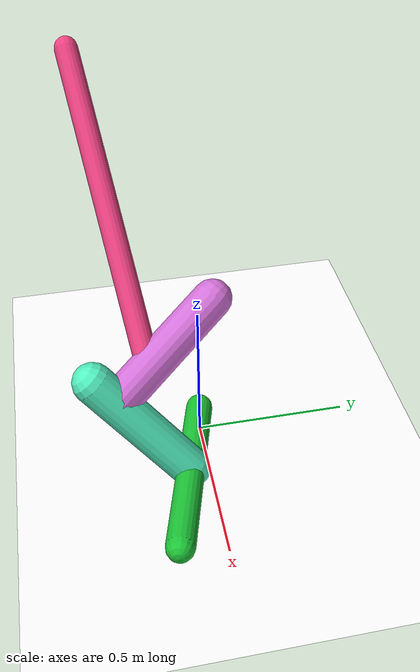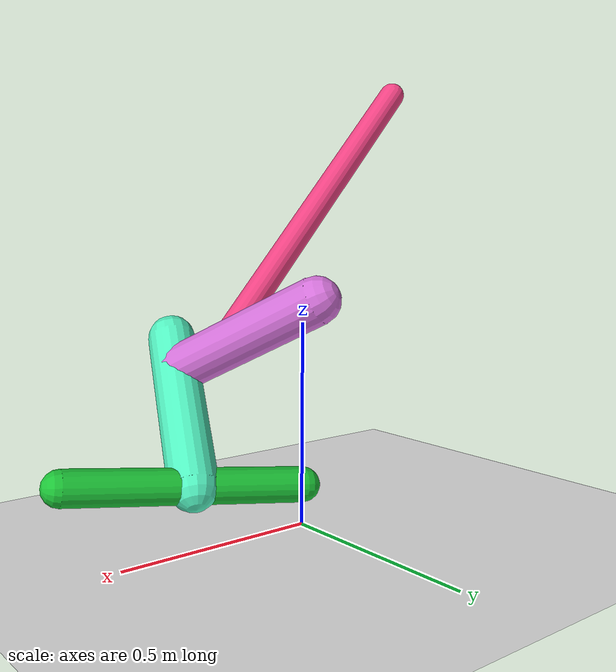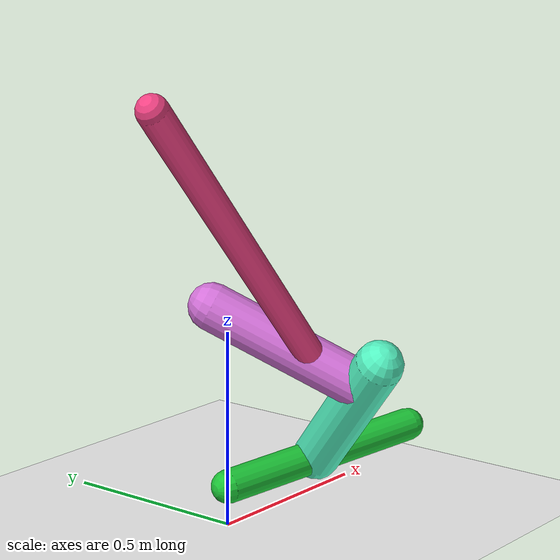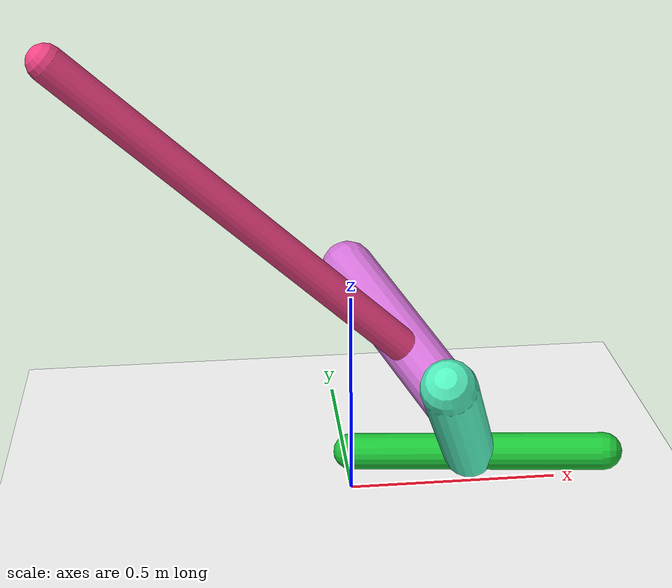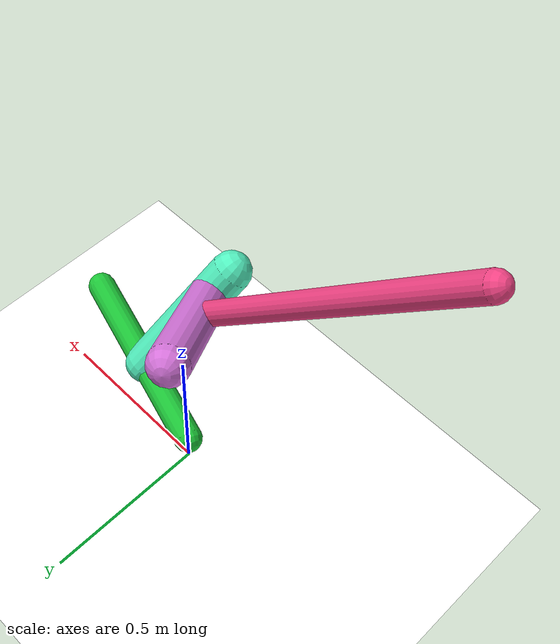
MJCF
<mujoco model="morphology">
  <option timestep="0.01"/>
  <default>
    <default class="/"/>
    <default class="0/"/>
    <default class="0/1/"/>
    <default class="0/1/2/"/>
    <default class="0/1/2/3/"/>
  </default>
  <asset>
    <texture name="texplane" type="2d" builtin="checker" rgb1="0.10000000000000001 0.20000000000000001 0.29999999999999999" rgb2="0.20000000000000001 0.29999999999999999 0.40000000000000002" width="300" height="300"/>
    <material name="MatPlane" class="/" texture="texplane" texrepeat="20 20" specular="1" shininess="1" reflectance="0.5"/>
  </asset>
  <worldbody>
    <light name="//unnamed_light_0" class="/" directional="true" pos="0 0 1.5" dir="0 0 -1.3" cutoff="100" exponent="1" diffuse="1 1 1" specular="0.10000000000000001 0.10000000000000001 0.10000000000000001"/>
    <geom name="ground" class="/" type="plane" size="15 15 0.5" material="MatPlane" rgba="1 1 1 1"/>
    <site name="body" class="/" size="9.9999999999999995e-07 9.9999999999999995e-07 9.9999999999999995e-07" pos="0 0 0.10000000000000001"/>
    <body pos="0 0 0.10000000000000001" name="0/">
      <freejoint name="0/"/>
      <geom name="0/geom" class="0/" type="capsule" contype="1" conaffinity="1" condim="3" size="0.04330588429200264" rgba="0.11428905564997627 0.77705033762087794 0.22129669858057777 1" friction="0.59999999999999998 0.10000000000000001 0.10000000000000001" fromto="0 0 0 0.56804046434715971 -0.15525629075038339 0.056431156890714096"/>
      <site name="0/end0" class="0/" size="0.0050000000000000001" pos="0.56804046434715971 -0.15525629075038339 0.056431156890714096"/>
      <site name="0/attach1" class="0/" size="9.9999999999999995e-07 9.9999999999999995e-07 9.9999999999999995e-07" pos="0.27007561509406897 -0.07381681562038718 0.026830270666096646"/>
      <body pos="0.27007561509406897 -0.07381681562038718 0.026830270666096646" name="0/1/">
        <joint name="0/1/joint/" class="0/" type="hinge" axis="0 0 1" limited="true" range="-35.345136538323111 35.345136538323111"/>
        <geom name="0/1/geom" class="0/1/" type="capsule" contype="1" conaffinity="1" condim="3" size="0.061263203988540432" rgba="0.32167793142094481 0.94745366611484405 0.75366166221370667 1" friction="0.59999999999999998 0.10000000000000001 0.10000000000000001" fromto="0 0 0 -0.10278899473126135 -0.26397379838807827 0.31269282569807011"/>
        <site name="0/1/end1" class="0/1/" size="0.0050000000000000001" pos="-0.10278899473126135 -0.26397379838807827 0.31269282569807011"/>
        <site name="0/1/attach2" class="0/1/" size="9.9999999999999995e-07 9.9999999999999995e-07 9.9999999999999995e-07" pos="-0.078832980704320918 -0.20245203690512162 0.23981660253691103"/>
        <body pos="-0.078832980704320918 -0.20245203690512162 0.23981660253691103" name="0/1/2/">
          <joint name="0/1/2/joint/" class="0/1/" type="hinge" axis="1.6653345369377348e-16 0.76412377037099932 0.64506965790835946" limited="true" range="-55.416223317389139 55.416223317389139"/>
          <geom name="0/1/2/geom" class="0/1/2/" type="capsule" contype="1" conaffinity="1" condim="3" size="0.060716048327253684" rgba="0.83239444513676342 0.44699551408965987 0.85251666871702525 1" friction="0.59999999999999998 0.10000000000000001 0.10000000000000001" fromto="0 0 0 -0.19330800560490924 0.32451195160748059 0.19085307118399131"/>
          <site name="0/1/2/end2" class="0/1/2/" size="0.0050000000000000001" pos="-0.19330800560490924 0.32451195160748059 0.19085307118399131"/>
          <site name="0/1/2/attach3" class="0/1/2/" size="9.9999999999999995e-07 9.9999999999999995e-07 9.9999999999999995e-07" pos="-0.062871488085494795 0.10554425428603273 0.062073045311681951"/>
          <body pos="-0.062871488085494795 0.10554425428603273 0.062073045311681951" name="0/1/2/3/">
            <joint name="0/1/2/3/joint/" class="0/1/2/" type="hinge" axis="-2.7755575615628914e-17 -0.50694846685095063 0.86197636392042098" limited="true" range="-55.968982673138129 55.968982673138129"/>
            <geom name="0/1/2/3/geom" class="0/1/2/3/" type="capsule" contype="1" conaffinity="1" condim="3" size="0.036722090734552876" rgba="0.94502785237631026 0.25837738026075363 0.51575337666639798 1" friction="0.59999999999999998 0.10000000000000001 0.10000000000000001" fromto="0 0 0 -0.72149162807518641 -0.12101001481717821 0.70341210593680126"/>
            <site name="0/1/2/3/end3" class="0/1/2/3/" size="0.0050000000000000001" pos="-0.72149162807518641 -0.12101001481717821 0.70341210593680126"/>
          </body>
        </body>
      </body>
      <camera name="0/iso" class="0/" mode="trackcom" pos="-2.2999999999999998 -2.2999999999999998 1" xyaxes="0.45000000000000001 -0.45000000000000001 0 0.29999999999999999 0.14999999999999999 0.93999999999999995"/>
    </body>
  </worldbody>
  <actuator>
    <motor name="0/1/motor" class="0/1/" ctrllimited="true" ctrlrange="-1 1" gear="85" joint="0/1/joint/"/>
    <motor name="0/1/2/motor" class="0/1/2/" ctrllimited="true" ctrlrange="-1 1" gear="69" joint="0/1/2/joint/"/>
    <motor name="0/1/2/3/motor" class="0/1/2/3/" ctrllimited="true" ctrlrange="-1 1" gear="63" joint="0/1/2/3/joint/"/>
  </actuator>
  <sensor>
    <subtreelinvel name="velocity" body="0/"/>
  </sensor>
</mujoco>
